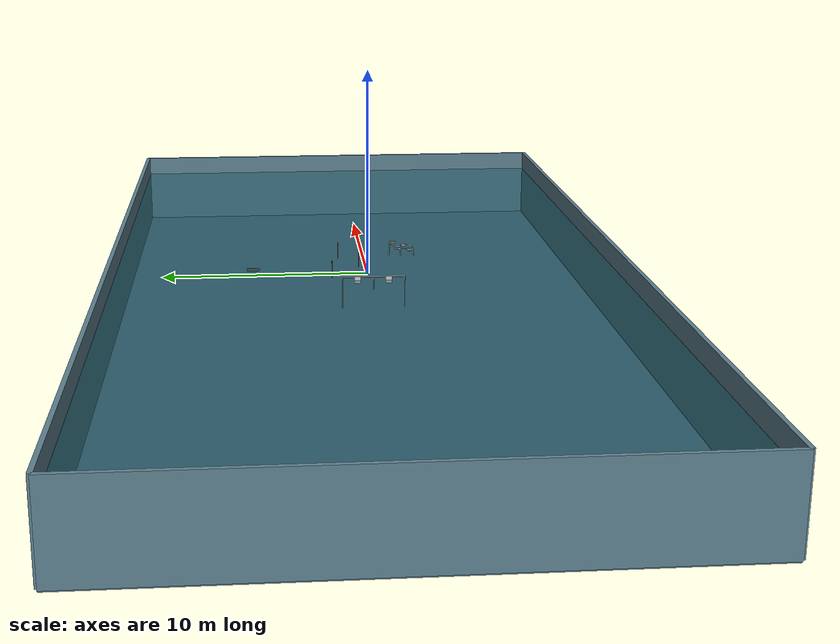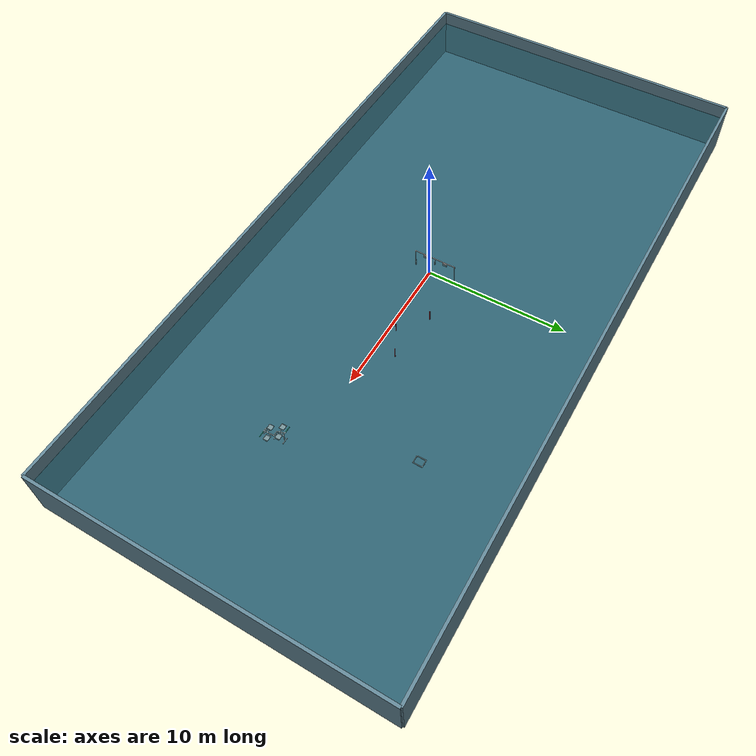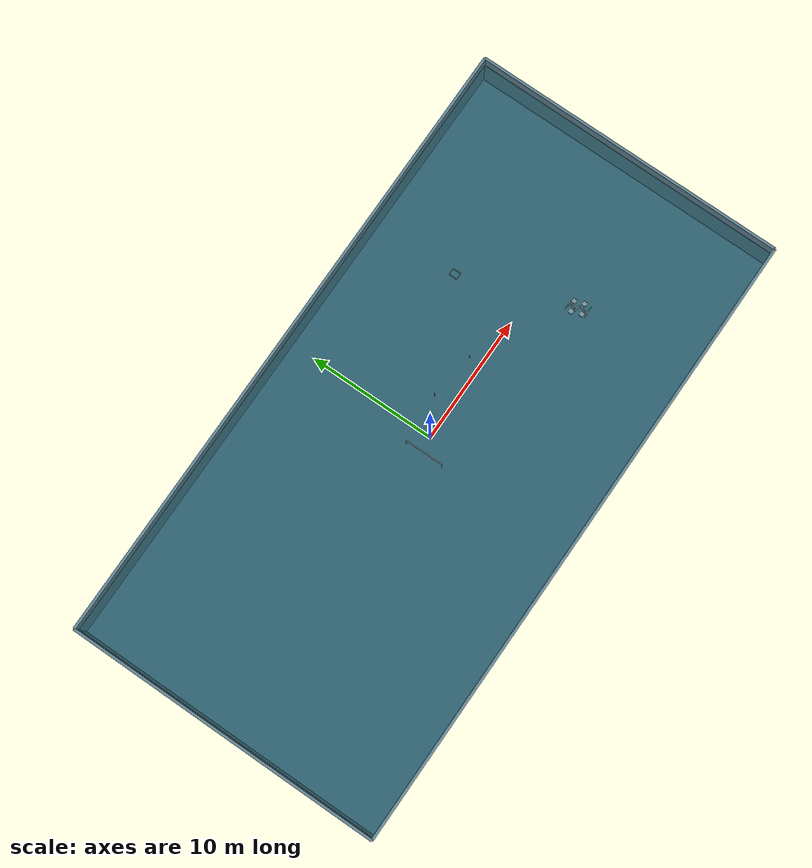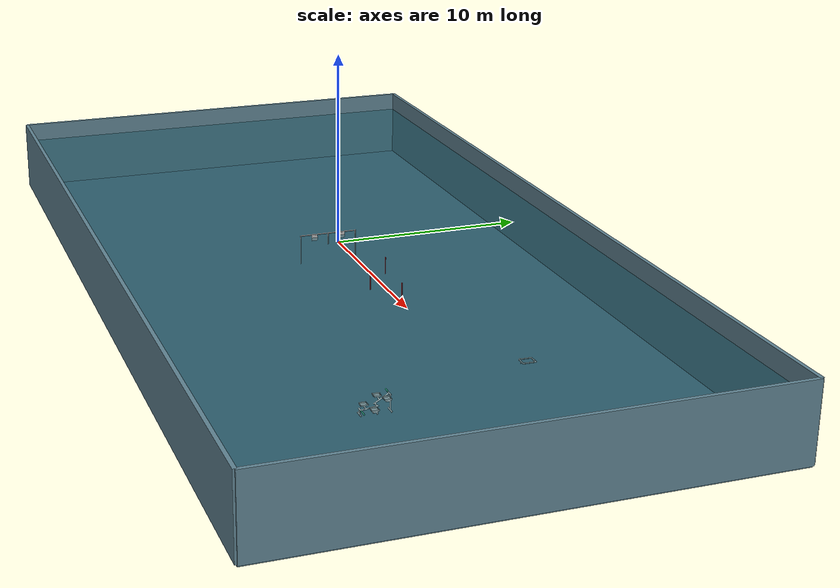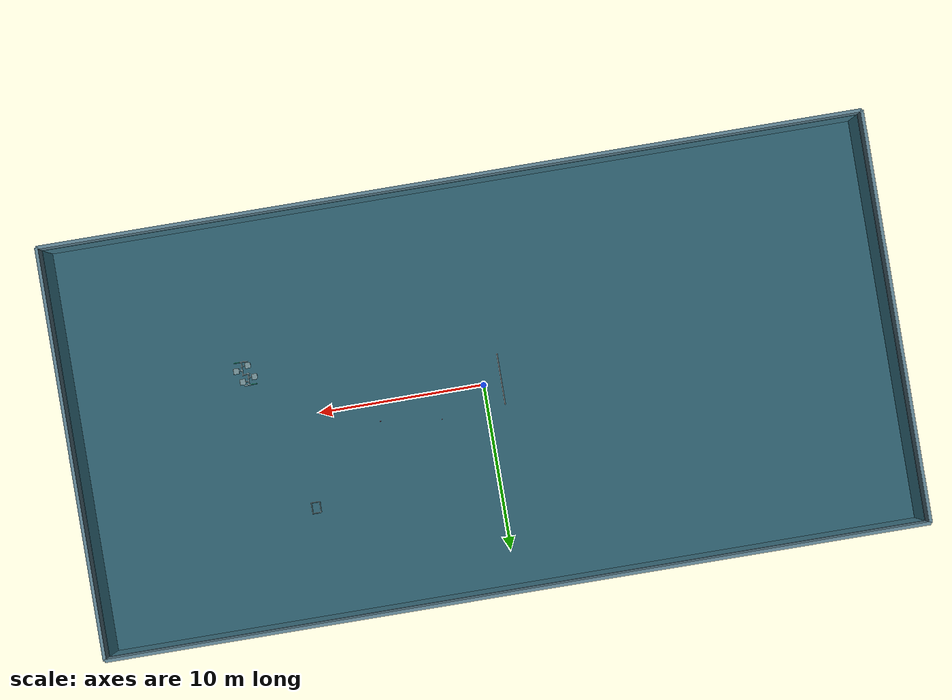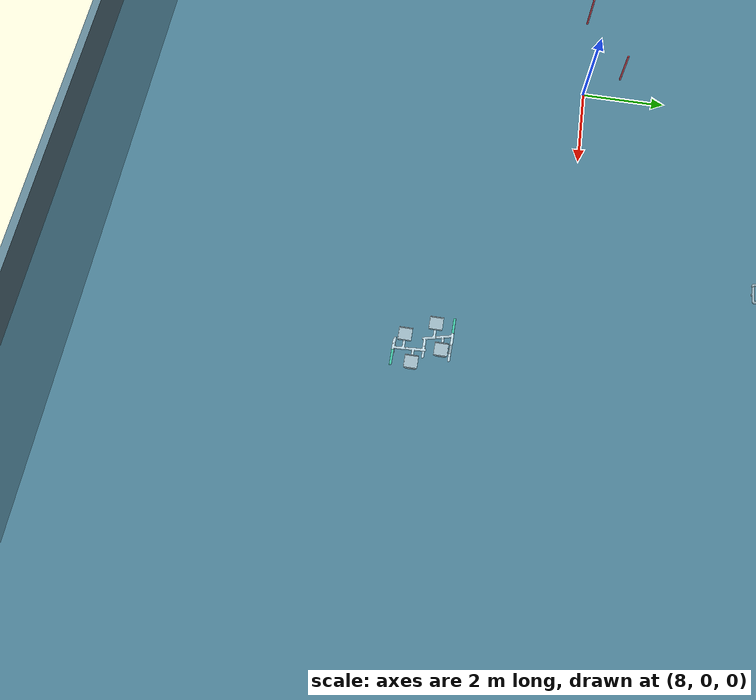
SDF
<sdf version="1.8">
 <world name="underwater_pool">
  <physics name="1ms" type="ode">
   <max_step_size>0.004</max_step_size>
   <real_time_factor>3</real_time_factor>
   <ode>
    <solver><type>quick</type><iters>30</iters><sor>1.3</sor></solver>
    <constraints>
     <cfm>0.0</cfm>
     <erp>0.2</erp>
     <contact_max_correcting_vel>0.1</contact_max_correcting_vel>
     <contact_surface_layer>0.001</contact_surface_layer>
    </constraints>
   </ode>
  </physics>
  <plugin filename="ignition-gazebo-physics-system" name="ignition::gazebo::systems::Physics"/>
  <plugin filename="ignition-gazebo-user-commands-system" name="ignition::gazebo::systems::UserCommands"/>
  <plugin filename="ignition-gazebo-scene-broadcaster-system" name="ignition::gazebo::systems::SceneBroadcaster"/>
  <plugin filename="ignition-gazebo-contact-system" name="ignition::gazebo::systems::Contact"/>
  <plugin filename="ignition-gazebo-buoyancy-system" name="ignition::gazebo::systems::Buoyancy">
   <graded_buoyancy>
    <default_density>1025</default_density>
    <density_change><above_depth>0</above_depth><density>1.2</density></density_change>
   </graded_buoyancy>
  </plugin>
  <plugin filename="ignition-gazebo-imu-system" name="ignition::gazebo::systems::Imu"/>
  <plugin filename="ignition-gazebo-sensors-system" name="ignition::gazebo::systems::Sensors">
   <render_engine>ogre2</render_engine>
  </plugin>
  <plugin filename="ignition-gazebo-apply-link-wrench-system" name="ignition::gazebo::systems::ApplyLinkWrench"/>
  <gravity>0 0 -9.81</gravity>
  <scene>
   <ambient>0 0 0 1</ambient>
   <background>0 0 0 1</background>
   <shadows>false</shadows>
   <grid>false</grid>
  </scene>
  <light type="directional" name="sun">
   <cast_shadows>false</cast_shadows>
   <pose>0 0 10 0 0 0</pose>
   <diffuse>0.9 0.95 1.0 1</diffuse>
   <specular>0.8 0.8 0.8 1</specular>
   <attenuation>
    <range>1000</range>
    <constant>0.9</constant>
    <linear>0.01</linear>
    <quadratic>0.001</quadratic>
   </attenuation>
   <direction>-0.5 0.1 -0.9</direction>
  </light>
  <light type="point" name="underwater_light_1">
   <cast_shadows>false</cast_shadows>
   <pose>-18 0 -1.5 0 0 0</pose>
   <diffuse>0.4 0.8 1.0 1</diffuse>
   <specular>0.2 0.5 0.8 1</specular>
   <attenuation>
    <range>20</range>
    <constant>0.2</constant>
    <linear>0.05</linear>
    <quadratic>0.01</quadratic>
   </attenuation>
  </light>
  <light type="point" name="underwater_light_2">
   <cast_shadows>false</cast_shadows>
   <pose>-6 0 -1.5 0 0 0</pose>
   <diffuse>0.4 0.8 1.0 1</diffuse>
   <specular>0.2 0.5 0.8 1</specular>
   <attenuation>
    <range>20</range>
    <constant>0.2</constant>
    <linear>0.05</linear>
    <quadratic>0.01</quadratic>
   </attenuation>
  </light>
  <light type="point" name="underwater_light_3">
   <cast_shadows>false</cast_shadows>
   <pose>6 0 -1.5 0 0 0</pose>
   <diffuse>0.4 0.8 1.0 1</diffuse>
   <specular>0.2 0.5 0.8 1</specular>
   <attenuation>
    <range>20</range>
    <constant>0.2</constant>
    <linear>0.05</linear>
    <quadratic>0.01</quadratic>
   </attenuation>
  </light>
  <light type="point" name="underwater_light_4">
   <cast_shadows>false</cast_shadows>
   <pose>18 0 -1.5 0 0 0</pose>
   <diffuse>0.4 0.8 1.0 1</diffuse>
   <specular>0.2 0.5 0.8 1</specular>
   <attenuation>
    <range>20</range>
    <constant>0.2</constant>
    <linear>0.05</linear>
    <quadratic>0.01</quadratic>
   </attenuation>
  </light>
  <light type="point" name="underwater_light_north">
   <cast_shadows>false</cast_shadows>
   <pose>0 10 -1.5 0 0 0</pose>
   <diffuse>0.4 0.8 1.0 1</diffuse>
   <specular>0.2 0.5 0.8 1</specular>
   <attenuation>
    <range>15</range>
    <constant>0.2</constant>
    <linear>0.05</linear>
    <quadratic>0.01</quadratic>
   </attenuation>
  </light>
  <light type="point" name="underwater_light_south">
   <cast_shadows>false</cast_shadows>
   <pose>0 -10 -1.5 0 0 0</pose>
   <diffuse>0.4 0.8 1.0 1</diffuse>
   <specular>0.2 0.5 0.8 1</specular>
   <attenuation>
    <range>15</range>
    <constant>0.2</constant>
    <linear>0.05</linear>
    <quadratic>0.01</quadratic>
   </attenuation>
  </light>
  <model name="pool_floor">
   <static>true</static>
   <pose>0 0 -3.05 0 0 0</pose>
   <link name="floor">
    <collision name="collision">
     <geometry><box><size>50 25 0.1</size></box></geometry>
     <surface>
      <contact><ode><kp>500000</kp><kd>200</kd><max_vel>0.5</max_vel><min_depth>0.001</min_depth></ode></contact>
      <friction><ode><mu>0.1</mu><mu2>0.1</mu2></ode></friction>
     </surface>
    </collision>
    <visual name="visual">
     <geometry><box><size>50 25 0.1</size></box></geometry>
     <material>
      <ambient>0.20 0.32 0.36 1</ambient>
      <diffuse>0.28 0.42 0.48 1</diffuse>
      <specular>0.08 0.12 0.14 1</specular>
      <pbr>
       <metal>
        <albedo_map>../media/textures/iitb_pool_texture.png</albedo_map>
        <normal_map>../media/textures/pool_tile_normal_tiled.png</normal_map>
        <roughness>0.72</roughness>
        <metalness>0.0</metalness>
       </metal>
      </pbr>
     </material>
    </visual>
   </link>
  </model>
  <model name="pool_wall_north">
   <static>true</static>
   <pose>0 12.5 -1 0 0 0</pose>
   <link name="wall">
    <collision name="collision">
     <geometry><box><size>50 0.2 4</size></box></geometry>
     <surface>
      <contact><ode><kp>500000</kp><kd>200</kd><max_vel>0.5</max_vel><min_depth>0.001</min_depth></ode></contact>
      <friction><ode><mu>0.1</mu><mu2>0.1</mu2></ode></friction>
     </surface>
    </collision>
    <visual name="visual">
     <geometry><box><size>50 0.2 4</size></box></geometry>
     <material>
      <ambient>0.30 0.42 0.46 1</ambient>
      <diffuse>0.38 0.52 0.58 1</diffuse>
      <specular>0.10 0.14 0.16 1</specular>
      <pbr>
       <metal>
        <albedo_map>../media/textures/Poliigon_TilesCeramicWhite_6956_BaseColor.jpg</albedo_map>
        <normal_map>../media/textures/Poliigon_TilesCeramicWhite_6956_Normal.png</normal_map>
        <roughness_map>../media/textures/Poliigon_TilesCeramicWhite_6956_Roughness.jpg</roughness_map>
        <metalness>0.0</metalness>
        <scale>40.0 4.0</scale>
       </metal>
      </pbr>
     </material>
    </visual>
   </link>
  </model>
  <model name="pool_wall_south">
   <static>true</static>
   <pose>0 -12.5 -1 0 0 0</pose>
   <link name="wall">
    <collision name="collision">
     <geometry><box><size>50 0.2 4</size></box></geometry>
     <surface>
      <contact><ode><kp>500000</kp><kd>200</kd><max_vel>0.5</max_vel><min_depth>0.001</min_depth></ode></contact>
      <friction><ode><mu>0.1</mu><mu2>0.1</mu2></ode></friction>
     </surface>
    </collision>
    <visual name="visual">
     <geometry><box><size>50 0.2 4</size></box></geometry>
     <material>
      <ambient>0.30 0.42 0.46 1</ambient>
      <diffuse>0.38 0.52 0.58 1</diffuse>
      <specular>0.10 0.14 0.16 1</specular>
      <pbr>
       <metal>
        <albedo_map>../media/textures/Poliigon_TilesCeramicWhite_6956_BaseColor.jpg</albedo_map>
        <normal_map>../media/textures/Poliigon_TilesCeramicWhite_6956_Normal.png</normal_map>
        <roughness_map>../media/textures/Poliigon_TilesCeramicWhite_6956_Roughness.jpg</roughness_map>
        <metalness>0.0</metalness>
        <scale>40.0 4.0</scale>
       </metal>
      </pbr>
     </material>
    </visual>
   </link>
  </model>
  <model name="pool_wall_east">
   <static>true</static>
   <pose>25 0 -1 0 0 0</pose>
   <link name="wall">
    <collision name="collision">
     <geometry><box><size>0.2 25 4</size></box></geometry>
     <surface>
      <contact><ode><kp>500000</kp><kd>200</kd><max_vel>0.5</max_vel><min_depth>0.001</min_depth></ode></contact>
      <friction><ode><mu>0.1</mu><mu2>0.1</mu2></ode></friction>
     </surface>
    </collision>
    <visual name="visual">
     <geometry><box><size>0.2 25 4</size></box></geometry>
     <material>
      <ambient>0.30 0.42 0.46 1</ambient>
      <diffuse>0.38 0.52 0.58 1</diffuse>
      <specular>0.10 0.14 0.16 1</specular>
      <pbr>
       <metal>
        <albedo_map>../media/textures/Poliigon_TilesCeramicWhite_6956_BaseColor.jpg</albedo_map>
        <normal_map>../media/textures/Poliigon_TilesCeramicWhite_6956_Normal.png</normal_map>
        <roughness_map>../media/textures/Poliigon_TilesCeramicWhite_6956_Roughness.jpg</roughness_map>
        <metalness>0.0</metalness>
        <scale>20.0 4.0</scale>
       </metal>
      </pbr>
     </material>
    </visual>
   </link>
  </model>
  <model name="pool_wall_west">
   <static>true</static>
   <pose>-25 0 -1 0 0 0</pose>
   <link name="wall">
    <collision name="collision">
     <geometry><box><size>0.2 25 4</size></box></geometry>
     <surface>
      <contact><ode><kp>500000</kp><kd>200</kd><max_vel>0.5</max_vel><min_depth>0.001</min_depth></ode></contact>
      <friction><ode><mu>0.1</mu><mu2>0.1</mu2></ode></friction>
     </surface>
    </collision>
    <visual name="visual">
     <geometry><box><size>0.2 25 4</size></box></geometry>
     <material>
      <ambient>0.30 0.42 0.46 1</ambient>
      <diffuse>0.38 0.52 0.58 1</diffuse>
      <specular>0.10 0.14 0.16 1</specular>
      <pbr>
       <metal>
        <albedo_map>../media/textures/Poliigon_TilesCeramicWhite_6956_BaseColor.jpg</albedo_map>
        <normal_map>../media/textures/Poliigon_TilesCeramicWhite_6956_Normal.png</normal_map>
        <roughness_map>../media/textures/Poliigon_TilesCeramicWhite_6956_Roughness.jpg</roughness_map>
        <metalness>0.0</metalness>
        <scale>20.0 4.0</scale>
       </metal>
      </pbr>
     </material>
    </visual>
   </link>
  </model>
  <model name="water_surface_texture">
   <static>true</static>
   <link name="surface">
    <visual name="visual">
     <cast_shadows>false</cast_shadows>
     <transparency>0.30</transparency>
     <geometry><plane><normal>0 0 1</normal><size>50 25</size></plane></geometry>
     <material>
      <ambient>0.30 0.62 0.78 0.70</ambient>
      <diffuse>0.35 0.68 0.82 0.70</diffuse>
      <specular>0.90 0.92 0.95 0.70</specular>
      <pbr>
       <metal>
        <albedo_map>../media/textures/water_water_0051_01.jpg</albedo_map>
        <normal_map>../media/textures/water_normal.png</normal_map>
        <roughness>0.08</roughness>
        <metalness>0.02</metalness>
       </metal>
      </pbr>
     </material>
    </visual>
   </link>
  </model>
  <include><uri>model://slalom_red</uri><name>slalom_red_r1</name><pose>2.8 1.6 -1.0 0 0 0</pose></include>
  <include><uri>model://slalom_red</uri><name>slalom_red_r2</name><pose>4.7 0.1 -1.0 0 0 0</pose></include>
  <include><uri>model://slalom_red</uri><name>slalom_red_r3</name><pose>6.5 1.1 -1.0 0 0 0</pose></include>
  <include>
   <uri>model://rs2026_bin_urdf</uri>
   <name>task3_bins</name>
   <pose>13.3 -2.8 -3.893 0 0 0</pose>
  </include>
  <include><uri>model://rs2026_gate</uri><name>task1_gate</name><pose>-1.1 -0.5 -0.2 0 0 0</pose></include>
  <include><uri>model://rs2026_torpedo</uri><name>task2_torpedo</name><pose>9.6 5.6 -1.5 0 0 0</pose></include>
  <model name="water_tint">
   <static>true</static>
   <pose>0 0 -1.5 0 0 0</pose>
   <link name="volume">
    <visual name="visual">
     <cast_shadows>false</cast_shadows>
     <transparency>0.62</transparency>
     <geometry><box><size>49.74 24.74 2.94</size></box></geometry>
     <material>
      <double_sided>true</double_sided>
      <lighting>false</lighting>
      <ambient>0.05 0.34 0.40 1</ambient>
      <diffuse>0.05 0.34 0.40 1</diffuse>
      <specular>0 0 0 1</specular>
     </material>
    </visual>
   </link>
  </model>
 </world>
</sdf>

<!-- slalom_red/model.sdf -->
<sdf version='1.9'>
  <model name='slalom_red'>
    <static>true</static>
    <link name='base_link'>
      <inertial>
        <pose>-4.6434e-19 0.45 -4.9507e-19 0 0 0</pose>
        <mass>1.8241</mass>
        <inertia>
          <ixx>0.12342</ixx>
          <ixy>2.5172e-35</ixy>
          <ixz>4.1934e-37</ixz>
          <iyy>0.00058843</iyy>
          <iyz>-1.0778e-35</iyz>
          <izz>0.12342</izz>
        </inertia>
      </inertial>
      <collision name='base_link_collision'>
        <pose>0 0 0 0 0 0</pose>
        <geometry>
          <mesh>
            <scale>1 1 1</scale>
            <uri>model://slalom_red/meshes/base_link.STL</uri>
          </mesh>
        </geometry>
      </collision>
      <visual name='base_link_visual'>
        <pose>0 0 0 0 0 0</pose>
        <geometry>
          <mesh>
            <scale>1 1 1</scale>
            <uri>model://slalom_red/meshes/base_link.STL</uri>
          </mesh>
        </geometry>
        <material>
          <diffuse>1 0 0 1</diffuse>
          <ambient>1 0 0 1</ambient>
        </material>
      </visual>
    </link>
  </model>
</sdf>

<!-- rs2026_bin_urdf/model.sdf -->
<sdf version='1.9'>
  <model name='rs2026_bin_urdf'>
    <static>true</static>
    <link name='base_link'>
      <inertial>
        <pose>1.0204 1.2699 0.28257 0 0 0</pose>
        <mass>11.751</mass>
        <inertia>
          <ixx>0.057018</ixx>
          <ixy>1.9787e-10</ixy>
          <ixz>-7.0658e-10</ixz>
          <iyy>0.060393</iyy>
          <iyz>0.0014998</iyz>
          <izz>0.096926</izz>
        </inertia>
      </inertial>
      <collision name='base_link_collision'>
        <pose>0 0 0 0 0 0</pose>
        <geometry>
          <mesh>
            <scale>1 1 1</scale>
            <uri>model://rs2026_bin_urdf/meshes/base_link.STL</uri>
          </mesh>
        </geometry>
      </collision>
      <visual name='base_link_visual'>
        <pose>0 0 0 0 0 0</pose>
        <geometry>
          <mesh>
            <scale>1 1 1</scale>
            <uri>model://rs2026_bin_urdf/meshes/base_link.STL</uri>
          </mesh>
        </geometry>
        <material>
          <diffuse>1 1 1 1</diffuse>
          <ambient>1 1 1 1</ambient>
        </material>
      </visual>
    </link>

    <joint name='box_1_joint' type='prismatic'>
      <pose relative_to='base_link'>0.81131 -0.64469 1.2801 1.5708 0 0</pose>
      <parent>base_link</parent>
      <child>box_1</child>
      <axis>
        <xyz>0 0 1</xyz>
        <limit>
          <lower>0</lower>
          <upper>0</upper>
          <effort>0</effort>
          <velocity>0</velocity>
        </limit>
        <dynamics>
          <spring_reference>0</spring_reference>
          <spring_stiffness>0</spring_stiffness>
        </dynamics>
      </axis>
    </joint>
    <link name='box_1'>
      <pose relative_to='box_1_joint'>0 0 0 0 0 0</pose>
      <inertial>
        <pose>1.1102e-16 0.071012 0.175 0 0 0</pose>
        <mass>5.327</mass>
        <inertia>
          <ixx>0.12994</ixx>
          <ixy>-7.0907e-17</ixy>
          <ixz>-1.6488e-17</ixz>
          <iyy>0.16257</iyy>
          <iyz>1.5356e-17</iyz>
          <izz>0.12994</izz>
        </inertia>
      </inertial>
      <collision name='box_1_collision'>
        <pose>0 0 0 0 0 0</pose>
        <geometry>
          <mesh>
            <scale>1 1 1</scale>
            <uri>model://rs2026_bin_urdf/meshes/box_1.STL</uri>
          </mesh>
        </geometry>
      </collision>
      <visual name='box_1_visual'>
        <pose>0 0 0 0 0 0</pose>
        <geometry>
          <mesh>
            <scale>1 1 1</scale>
            <uri>model://rs2026_bin_urdf/meshes/box_1.dae</uri>
          </mesh>
        </geometry>
      </visual>

      <!-- Scoring: markers landing in this bin. -->
      <sensor name='box_1_contact_sensor' type='contact'>
        <update_rate>30.0</update_rate>
        <always_on>true</always_on>
        <contact>
          <collision>box_1_collision</collision>
        </contact>
      </sensor>
    </link>

    <joint name='box_2_joint' type='prismatic'>
      <pose relative_to='base_link'>1.5566 -0.38765 1.3134 1.5708 0 0</pose>
      <parent>base_link</parent>
      <child>box_2</child>
      <axis>
        <xyz>0 0 1</xyz>
        <limit>
          <lower>0</lower>
          <upper>0</upper>
          <effort>0</effort>
          <velocity>0</velocity>
        </limit>
        <dynamics>
          <spring_reference>0</spring_reference>
          <spring_stiffness>0</spring_stiffness>
        </dynamics>
      </axis>
    </joint>
    <link name='box_2'>
      <pose relative_to='box_2_joint'>0 0 0 0 0 0</pose>
      <inertial>
        <pose>0 0.071012 0.175 0 0 0</pose>
        <mass>5.327</mass>
        <inertia>
          <ixx>0.12994</ixx>
          <ixy>-1.3072e-17</ixy>
          <ixz>2.5931e-17</ixz>
          <iyy>0.16257</iyy>
          <iyz>7.8168e-17</iyz>
          <izz>0.12994</izz>
        </inertia>
      </inertial>
      <collision name='box_2_collision'>
        <pose>0 0 0 0 0 0</pose>
        <geometry>
          <mesh>
            <scale>1 1 1</scale>
            <uri>model://rs2026_bin_urdf/meshes/box_2.STL</uri>
          </mesh>
        </geometry>
      </collision>
      <visual name='box_2_visual'>
        <pose>0 0 0 0 0 0</pose>
        <geometry>
          <mesh>
            <scale>1 1 1</scale>
            <uri>model://rs2026_bin_urdf/meshes/box_2.dae</uri>
          </mesh>
        </geometry>
      </visual>

      <!-- Scoring: markers landing in this bin. -->
      <sensor name='box_2_contact_sensor' type='contact'>
        <update_rate>30.0</update_rate>
        <always_on>true</always_on>
        <contact>
          <collision>box_2_collision</collision>
        </contact>
      </sensor>
    </link>

    <joint name='box_3_joint' type='prismatic'>
      <pose relative_to='base_link'>0.48431 0 1.4793 1.5708 0 0</pose>
      <parent>base_link</parent>
      <child>box_3</child>
      <axis>
        <xyz>0 0 1</xyz>
        <limit>
          <lower>0</lower>
          <upper>0</upper>
          <effort>0</effort>
          <velocity>0</velocity>
        </limit>
        <dynamics>
          <spring_reference>0</spring_reference>
          <spring_stiffness>0</spring_stiffness>
        </dynamics>
      </axis>
    </joint>
    <link name='box_3'>
      <pose relative_to='box_3_joint'>0 0 0 0 0 0</pose>
      <inertial>
        <pose>-1.6653e-16 0.071012 0.065224 0 0 0</pose>
        <mass>5.327</mass>
        <inertia>
          <ixx>0.12994</ixx>
          <ixy>6.8046e-17</ixy>
          <ixz>-2.0031e-17</ixz>
          <iyy>0.16257</iyy>
          <iyz>-1.7974e-17</iyz>
          <izz>0.12994</izz>
        </inertia>
      </inertial>
      <collision name='box_3_collision'>
        <pose>0 0 0 0 0 0</pose>
        <geometry>
          <mesh>
            <scale>1 1 1</scale>
            <uri>model://rs2026_bin_urdf/meshes/box_3.STL</uri>
          </mesh>
        </geometry>
      </collision>
      <visual name='box_3_visual'>
        <pose>0 0 -0.109776 0 0 0</pose>
        <geometry>
          <mesh>
            <scale>1 1 1</scale>
            <uri>model://rs2026_bin_urdf/meshes/box_2.dae</uri>
          </mesh>
        </geometry>

      </visual>

      <!-- Scoring: markers landing in this bin. -->
      <sensor name='box_3_contact_sensor' type='contact'>
        <update_rate>30.0</update_rate>
        <always_on>true</always_on>
        <contact>
          <collision>box_3_collision</collision>
        </contact>
      </sensor>
    </link>

    <joint name='box_4_joint' type='prismatic'>
      <pose relative_to='base_link'>1.2296 0 1.612 1.5708 0 0</pose>
      <parent>base_link</parent>
      <child>box_4</child>
      <axis>
        <xyz>0 0 1</xyz>
        <limit>
          <lower>0</lower>
          <upper>0</upper>
          <effort>0</effort>
          <velocity>0</velocity>
        </limit>
        <dynamics>
          <spring_reference>0</spring_reference>
          <spring_stiffness>0</spring_stiffness>
        </dynamics>
      </axis>
    </joint>
    <link name='box_4'>
      <pose relative_to='box_4_joint'>0 0 0 0 0 0</pose>
      <inertial>
        <pose>0 0.071012 -0.15148 0 0 0</pose>
        <mass>5.327</mass>
        <inertia>
          <ixx>0.12994</ixx>
          <ixy>-3.3796e-17</ixy>
          <ixz>8.2973e-17</ixz>
          <iyy>0.16257</iyy>
          <iyz>4.1683e-17</iyz>
          <izz>0.12994</izz>
        </inertia>
      </inertial>
      <collision name='box_4_collision'>
        <pose>0 0 0 0 0 0</pose>
        <geometry>
          <mesh>
            <scale>1 1 1</scale>
            <uri>model://rs2026_bin_urdf/meshes/box_4.STL</uri>
          </mesh>
        </geometry>
      </collision>
      <visual name='box_4_visual'>
        <pose>0 0 -0.326476 0 0 0</pose>
        <geometry>
          <mesh>
            <scale>1 1 1</scale>
            <uri>model://rs2026_bin_urdf/meshes/box_1.dae</uri>
          </mesh>
        </geometry>
      </visual>

      <!-- Scoring: markers landing in this bin. -->
      <sensor name='box_4_contact_sensor' type='contact'>
        <update_rate>30.0</update_rate>
        <always_on>true</always_on>
        <contact>
          <collision>box_4_collision</collision>
        </contact>
      </sensor>
    </link>

    <!-- continuous joint converted to revolute with no effective limits -->
    <joint name='greenbar_1_joint' type='revolute'>
      <pose relative_to='base_link'>1.2157 -1.0792 1.1928 -1.5707926535764 -1.5707926536058 3.1415926535898</pose>
      <parent>base_link</parent>
      <child>greenbar_1</child>
      <axis>
        <xyz>0 1 0</xyz>
        <limit>
          <lower>-1e16</lower>
          <upper>1e16</upper>
        </limit>
        <dynamics>
          <spring_reference>0</spring_reference>
          <spring_stiffness>0</spring_stiffness>
        </dynamics>
      </axis>
    </joint>
    <link name='greenbar_1'>
      <pose relative_to='greenbar_1_joint'>0 0 0 0 0 0</pose>
      <inertial>
        <pose>0 -0.225 0 0 0 0</pose>
        <mass>0.59523</mass>
        <inertia>
          <ixx>0.010255</ixx>
          <ixy>1.3235e-20</ixy>
          <ixz>-1.4334e-36</ixz>
          <iyy>0.00042171</iyy>
          <iyz>6.3473e-35</iyz>
          <izz>0.010255</izz>
        </inertia>
      </inertial>
      <collision name='greenbar_1_collision'>
        <pose>0 0 0 0 0 0</pose>
        <geometry>
          <mesh>
            <scale>1 1 1</scale>
            <uri>model://rs2026_bin_urdf/meshes/greenbar_1.STL</uri>
          </mesh>
        </geometry>
      </collision>
      <visual name='greenbar_1_visual'>
        <pose>0 0 0 0 0 0</pose>
        <geometry>
          <mesh>
            <scale>1 1 1</scale>
            <uri>model://rs2026_bin_urdf/meshes/greenbar_1.STL</uri>
          </mesh>
        </geometry>
        <material>
          <diffuse>0.24 0.87 0.62 1</diffuse>
          <ambient>0.24 0.87 0.62 1</ambient>
        </material>
      </visual>
    </link>

    <!-- greenbar_2 had zero mass in URDF; assigned minimal mass to make SDF valid -->
    <joint name='greenbar_2_joint' type='revolute'>
      <pose relative_to='base_link'>0.37519 0.38798 1.6905 1.5708 1.5708 0</pose>
      <parent>base_link</parent>
      <child>greenbar_2</child>
      <axis>
        <xyz>0 1 0</xyz>
        <limit>
          <lower>-1e16</lower>
          <upper>1e16</upper>
        </limit>
        <dynamics>
          <spring_reference>0</spring_reference>
          <spring_stiffness>0</spring_stiffness>
        </dynamics>
      </axis>
    </joint>
    <link name='greenbar_2'>
      <pose relative_to='greenbar_2_joint'>0 0 0 0 0 0</pose>
      <inertial>
        <pose>0 0 0 0 0 0</pose>
        <mass>0.001</mass>
        <inertia>
          <ixx>1e-6</ixx>
          <ixy>0</ixy>
          <ixz>0</ixz>
          <iyy>1e-6</iyy>
          <iyz>0</iyz>
          <izz>1e-6</izz>
        </inertia>
      </inertial>
      <collision name='greenbar_2_collision'>
        <pose>0 0 0 0 0 0</pose>
        <geometry>
          <mesh>
            <scale>1 1 1</scale>
            <uri>model://rs2026_bin_urdf/meshes/greenbar_2.STL</uri>
          </mesh>
        </geometry>
      </collision>
      <visual name='greenbar_2_visual'>
        <pose>0 0 0 0 0 0</pose>
        <geometry>
          <mesh>
            <scale>1 1 1</scale>
            <uri>model://rs2026_bin_urdf/meshes/greenbar_2.STL</uri>
          </mesh>
        </geometry>
        <material>
          <diffuse>0.24 0.87 0.62 1</diffuse>
          <ambient>0.24 0.87 0.62 1</ambient>
        </material>
      </visual>
    </link>

  </model>
</sdf>

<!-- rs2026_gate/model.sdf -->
<sdf version='1.9'>
  <model name='rs2026_gate'>
    <static>true</static>
    <link name='base_link'>
      <inertial>
        <pose>8.6159e-05 2.2529e-06 -0.26534 0 0 0</pose>
        <mass>15.543</mass>
        <inertia>
          <ixx>3.2566</ixx>
          <ixy>-1.1467e-05</ixy>
          <ixz>-0.00030835</ixz>
          <iyy>23.727</iyy>
          <iyz>2.6926e-06</iyz>
          <izz>20.475</izz>
        </inertia>
      </inertial>
      <collision name='base_link_collision'>
        <pose>0 0 0 0 0 0</pose>
        <geometry>
          <mesh>
            <scale>1 1 1</scale>
            <uri>model://rs2026_gate/meshes/base_link.dae</uri>
          </mesh>
        </geometry>
      </collision>
      <visual name='base_link_visual'>
        <pose>0 0 0 0 0 0</pose>
        <geometry>
          <mesh>
            <scale>1 1 1</scale>
            <uri>model://rs2026_gate/meshes/base_link.dae</uri>
          </mesh>
        </geometry>
      </visual>

      <sensor name='gate_contact_sensor' type='contact'>
        <update_rate>30.0</update_rate>
        <always_on>true</always_on>
        <contact>
          <collision>base_link_collision</collision>
        </contact>
      </sensor>

    </link>
  </model>
</sdf>

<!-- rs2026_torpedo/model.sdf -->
<sdf version='1.9'>
  <model name='rs2026_torpedo'>
    <static>true</static>

    <link name='base_link'>
      <pose>0.732111 -0.007367 -0.221432 0 0 0</pose>

      <inertial>
        <pose>0.127055 1.073286 1.621449 0 0 1.5708</pose>
        <mass>11.6979</mass>
        <inertia>
          <ixx>0.159463</ixx>
          <ixy>-9.0771e-10</ixy>
          <ixz>0.006781</ixz>
          <iyy>0.347431</iyy>
          <iyz>4.0684e-20</iyz>
          <izz>0.201773</izz>
        </inertia>
      </inertial>

      <visual name='base_link_visual'>
        <pose>0 0 0 1.5708 0 1.5708</pose>
        <geometry>
          <mesh>
            <scale>1 1 1</scale>
            <uri>model://rs2026_torpedo/meshes/base_link.glb</uri>
          </mesh>
        </geometry>

      </visual>
    </link>

  </model>
</sdf>
